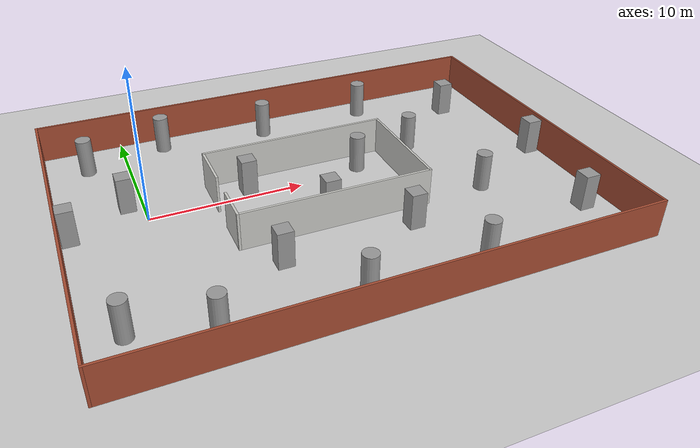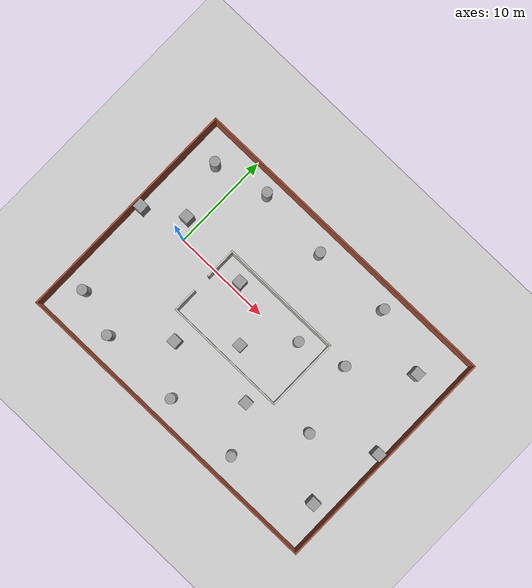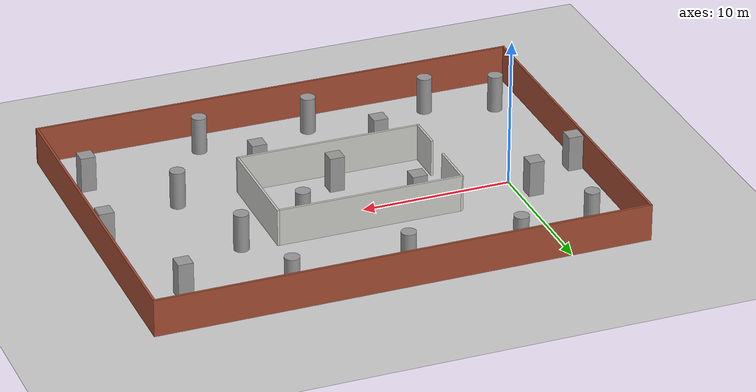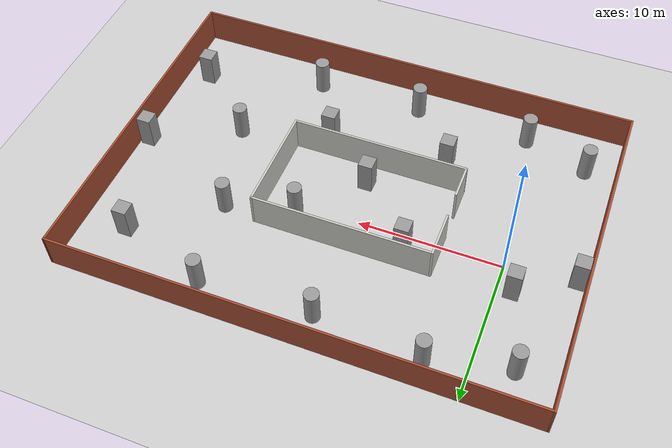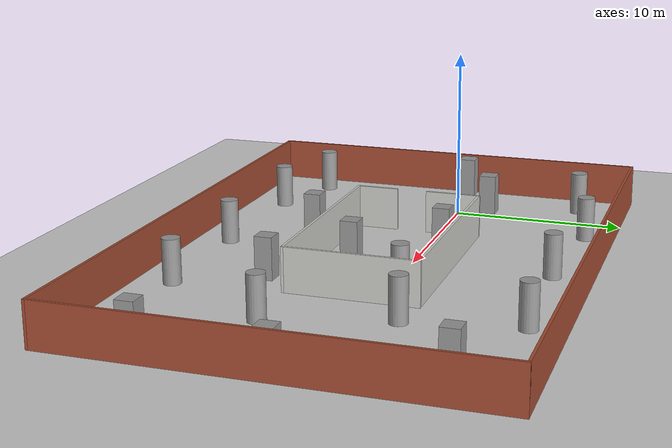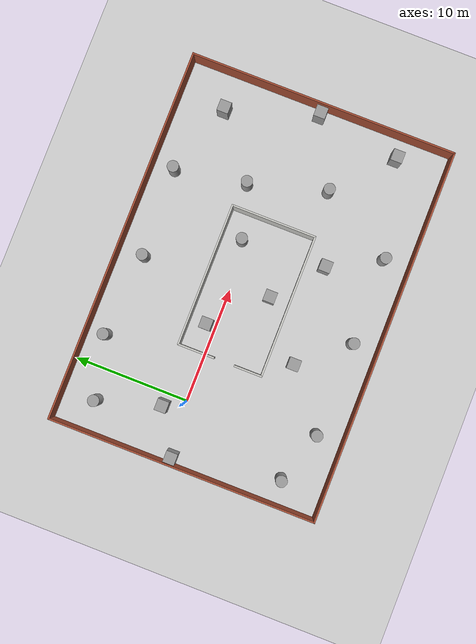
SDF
<sdf version="1.6">
 <world name="default">
  <light name="sun" type="directional">
   <pose>0 0 10 0 -0 0</pose>
   <diffuse>0.8 0.8 0.8 1</diffuse>
   <specular>0.2 0.2 0.2 1</specular>
   <attenuation>
    <range>1000</range>
    <constant>0.9</constant>
    <linear>0.01</linear>
    <quadratic>0.001</quadratic>
   </attenuation>
   <direction>-0.5 0.1 -0.9</direction>
  </light>
  <model name="ground_plane">
   <static>1</static>
   <link name="link">
    <collision name="collision">
     <geometry><plane><normal>0 0 1</normal><size>100 100</size></plane></geometry>
     <surface>
      <contact><collide_bitmask>65535</collide_bitmask></contact>
      <friction><ode><mu>100</mu><mu2>50</mu2></ode></friction>
     </surface>
    </collision>
    <visual name="visual">
     <cast_shadows>0</cast_shadows>
     <geometry><plane><normal>0 0 1</normal><size>100 100</size></plane></geometry>
     <material>
      <script><uri>file://media/materials/scripts/gazebo.material</uri><name>Gazebo/Grey</name></script>
     </material>
    </visual>
   </link>
  </model>
  <gravity>0 0 -9.8</gravity>
  <magnetic_field>6e-06 2.3e-05 -4.2e-05</magnetic_field>
  <atmosphere type="adiabatic"/>
  <physics name="default_physics" default="0" type="ode">
   <max_step_size>0.001</max_step_size>
   <real_time_factor>1</real_time_factor>
   <real_time_update_rate>1000</real_time_update_rate>
  </physics>
  <scene><ambient>0.4 0.4 0.4 1</ambient><background>0.7 0.7 0.7 1</background><shadows>1</shadows></scene>
  <audio><device>default</device></audio>
  <spherical_coordinates>
   <surface_model>EARTH_WGS84</surface_model>
   <latitude_deg>0</latitude_deg>
   <longitude_deg>0</longitude_deg>
   <elevation>0</elevation>
   <heading_deg>0</heading_deg>
  </spherical_coordinates>
  <model name="simple_grave">
   <pose>10.9972 -1.69852 0 0 -0 0</pose>
   <link name="Wall_10">
    <collision name="Wall_10_Collision">
     <geometry><box><size>12.5 0.15 2.5</size></box></geometry>
     <pose>0 0 1.25 0 -0 0</pose>
    </collision>
    <visual name="Wall_10_Visual">
     <pose>0 0 1.25 0 -0 0</pose>
     <geometry><box><size>12.5 0.15 2.5</size></box></geometry>
     <material>
      <script><uri>file://media/materials/scripts/gazebo.material</uri><name>Gazebo/CeilingTiled</name></script>
      <ambient>1 1 1 1</ambient>
     </material>
     <meta><layer>0</layer></meta>
    </visual>
    <pose>-0.596303 -3.36313 0 0 -0 3.14159</pose>
   </link>
   <link name="Wall_11">
    <collision name="Wall_11_Collision">
     <geometry><box><size>2.5 0.15 2.5</size></box></geometry>
     <pose>0 0 1.25 0 -0 0</pose>
    </collision>
    <visual name="Wall_11_Visual">
     <pose>0 0 1.25 0 -0 0</pose>
     <geometry><box><size>2.5 0.15 2.5</size></box></geometry>
     <material>
      <script><uri>file://media/materials/scripts/gazebo.material</uri><name>Gazebo/CeilingTiled</name></script>
      <ambient>1 1 1 1</ambient>
     </material>
     <meta><layer>0</layer></meta>
    </visual>
    <pose>-6.7713 -2.18812 0 0 -0 1.5708</pose>
   </link>
   <link name="Wall_2">
    <collision name="Wall_2_Collision">
     <geometry><box><size>23.5 0.15 2.5</size></box></geometry>
     <pose>0 0 1.25 0 -0 0</pose>
    </collision>
    <visual name="Wall_2_Visual">
     <pose>0 0 1.25 0 -0 0</pose>
     <geometry><box><size>23.5 0.15 2.5</size></box></geometry>
     <material>
      <script><uri>file://media/materials/scripts/gazebo.material</uri><name>Gazebo/Bricks</name></script>
      <ambient>1 1 1 1</ambient>
     </material>
     <meta><layer>0</layer></meta>
    </visual>
    <pose>-16.3 0 0 0 -0 1.5708</pose>
   </link>
   <link name="Wall_3">
    <collision name="Wall_3_Collision">
     <geometry><box><size>32.75 0.15 2.5</size></box></geometry>
     <pose>0 0 1.25 0 -0 0</pose>
    </collision>
    <visual name="Wall_3_Visual">
     <pose>0 0 1.25 0 -0 0</pose>
     <geometry><box><size>32.75 0.15 2.5</size></box></geometry>
     <material>
      <script><uri>file://media/materials/scripts/gazebo.material</uri><name>Gazebo/Bricks</name></script>
      <ambient>1 1 1 1</ambient>
     </material>
     <meta><layer>0</layer></meta>
    </visual>
    <pose>0 11.675 0 0 -0 0</pose>
   </link>
   <link name="Wall_4">
    <collision name="Wall_4_Collision">
     <geometry><box><size>23.5 0.15 2.5</size></box></geometry>
     <pose>0 0 1.25 0 -0 0</pose>
    </collision>
    <visual name="Wall_4_Visual">
     <pose>0 0 1.25 0 -0 0</pose>
     <geometry><box><size>23.5 0.15 2.5</size></box></geometry>
     <material>
      <script><uri>file://media/materials/scripts/gazebo.material</uri><name>Gazebo/Bricks</name></script>
      <ambient>1 1 1 1</ambient>
     </material>
     <meta><layer>0</layer></meta>
    </visual>
    <pose>16.3 0 0 0 -0 -1.5708</pose>
   </link>
   <link name="Wall_5">
    <collision name="Wall_5_Collision">
     <geometry><box><size>32.75 0.15 2.5</size></box></geometry>
     <pose>0 0 1.25 0 -0 0</pose>
    </collision>
    <visual name="Wall_5_Visual">
     <pose>0 0 1.25 0 -0 0</pose>
     <geometry><box><size>32.75 0.15 2.5</size></box></geometry>
     <material>
      <script><uri>file://media/materials/scripts/gazebo.material</uri><name>Gazebo/Bricks</name></script>
      <ambient>1 1 1 1</ambient>
     </material>
     <meta><layer>0</layer></meta>
    </visual>
    <pose>0 -11.675 0 0 -0 3.14159</pose>
   </link>
   <link name="Wall_7">
    <collision name="Wall_7_Collision">
     <geometry><box><size>3.25 0.15 2.5</size></box></geometry>
     <pose>0 0 1.25 0 -0 0</pose>
    </collision>
    <visual name="Wall_7_Visual">
     <pose>0 0 1.25 0 -0 0</pose>
     <geometry><box><size>3.25 0.15 2.5</size></box></geometry>
     <material>
      <script><uri>file://media/materials/scripts/gazebo.material</uri><name>Gazebo/CeilingTiled</name></script>
      <ambient>1 1 1 1</ambient>
     </material>
     <meta><layer>0</layer></meta>
    </visual>
    <pose>-6.7713 2.43688 0 0 -0 1.5708</pose>
   </link>
   <link name="Wall_8">
    <collision name="Wall_8_Collision">
     <geometry><box><size>12.5 0.15 2.5</size></box></geometry>
     <pose>0 0 1.25 0 -0 0</pose>
    </collision>
    <visual name="Wall_8_Visual">
     <pose>0 0 1.25 0 -0 0</pose>
     <geometry><box><size>12.5 0.15 2.5</size></box></geometry>
     <material>
      <script><uri>file://media/materials/scripts/gazebo.material</uri><name>Gazebo/CeilingTiled</name></script>
      <ambient>1 1 1 1</ambient>
     </material>
     <meta><layer>0</layer></meta>
    </visual>
    <pose>-0.596303 3.98687 0 0 -0 0</pose>
   </link>
   <link name="Wall_9">
    <collision name="Wall_9_Collision">
     <geometry><box><size>7.5 0.15 2.5</size></box></geometry>
     <pose>0 0 1.25 0 -0 0</pose>
    </collision>
    <visual name="Wall_9_Visual">
     <pose>0 0 1.25 0 -0 0</pose>
     <geometry><box><size>7.5 0.15 2.5</size></box></geometry>
     <material>
      <script><uri>file://media/materials/scripts/gazebo.material</uri><name>Gazebo/CeilingTiled</name></script>
      <ambient>1 1 1 1</ambient>
     </material>
     <meta><layer>0</layer></meta>
    </visual>
    <pose>5.5787 0.311875 0 0 -0 -1.5708</pose>
   </link>
   <static>1</static>
  </model>
  <model name="unit_box">
   <pose>6.63847 0.785241 1.19937 -2e-06 -0 0.000319</pose>
   <link name="link">
    <inertial>
     <mass>1</mass>
     <inertia>
      <ixx>0.166667</ixx>
      <ixy>0</ixy>
      <ixz>0</ixz>
      <iyy>0.166667</iyy>
      <iyz>0</iyz>
      <izz>0.166667</izz>
     </inertia>
    </inertial>
    <collision name="collision"><geometry><box><size>1 1 2.39873</size></box></geometry></collision>
    <visual name="visual">
     <geometry><box><size>1 1 2.39873</size></box></geometry>
     <material>
      <script><name>Gazebo/Grey</name><uri>file://media/materials/scripts/gazebo.material</uri></script>
     </material>
    </visual>
   </link>
  </model>
  <model name="unit_box_clone">
   <pose>10.6338 -3.36443 1.19937 1e-06 -1e-06 -0.000294</pose>
   <link name="link">
    <inertial>
     <mass>1</mass>
     <inertia>
      <ixx>0.166667</ixx>
      <ixy>0</ixy>
      <ixz>0</ixz>
      <iyy>0.166667</iyy>
      <iyz>0</iyz>
      <izz>0.166667</izz>
     </inertia>
    </inertial>
    <collision name="collision"><geometry><box><size>1 1 2.39873</size></box></geometry></collision>
    <visual name="visual">
     <geometry><box><size>1 1 2.39873</size></box></geometry>
     <material>
      <script><name>Gazebo/Grey</name><uri>file://media/materials/scripts/gazebo.material</uri></script>
     </material>
    </visual>
   </link>
  </model>
  <model name="unit_cylinder">
   <pose>14.2791 0.569778 1.26627 0 -0 -1e-05</pose>
   <link name="link">
    <inertial>
     <mass>1</mass>
     <inertia><ixx>0.145833</ixx><ixy>0</ixy><ixz>0</ixz><iyy>0.145833</iyy><iyz>0</iyz><izz>0.125</izz></inertia>
    </inertial>
    <collision name="collision">
     <geometry><cylinder><radius>0.5</radius><length>2.53254</length></cylinder></geometry>
    </collision>
    <visual name="visual">
     <geometry><cylinder><radius>0.5</radius><length>2.53254</length></cylinder></geometry>
     <material>
      <script><name>Gazebo/Grey</name><uri>file://media/materials/scripts/gazebo.material</uri></script>
     </material>
    </visual>
   </link>
  </model>
  <model name="unit_cylinder_clone">
   <pose>-2.60861 7.08129 1.26626 0 0 -7e-06</pose>
   <link name="link">
    <inertial>
     <mass>1</mass>
     <inertia><ixx>0.145833</ixx><ixy>0</ixy><ixz>0</ixz><iyy>0.145833</iyy><iyz>0</iyz><izz>0.125</izz></inertia>
    </inertial>
    <collision name="collision">
     <geometry><cylinder><radius>0.5</radius><length>2.53254</length></cylinder></geometry>
    </collision>
    <visual name="visual">
     <geometry><cylinder><radius>0.5</radius><length>2.53254</length></cylinder></geometry>
     <material>
      <script><name>Gazebo/Grey</name><uri>file://media/materials/scripts/gazebo.material</uri></script>
     </material>
    </visual>
   </link>
  </model>
  <model name="unit_cylinder_clone_0">
   <pose>2.77121 8.37464 1.26626 0 0 -7e-06</pose>
   <link name="link">
    <inertial>
     <mass>1</mass>
     <inertia><ixx>0.145833</ixx><ixy>0</ixy><ixz>0</ixz><iyy>0.145833</iyy><iyz>0</iyz><izz>0.125</izz></inertia>
    </inertial>
    <collision name="collision">
     <geometry><cylinder><radius>0.5</radius><length>2.53254</length></cylinder></geometry>
    </collision>
    <visual name="visual">
     <geometry><cylinder><radius>0.5</radius><length>2.53254</length></cylinder></geometry>
     <material>
      <script><name>Gazebo/Grey</name><uri>file://media/materials/scripts/gazebo.material</uri></script>
     </material>
    </visual>
   </link>
  </model>
  <model name="unit_cylinder_clone_1">
   <pose>10.0504 7.788 1.26626 0 0 -7e-06</pose>
   <link name="link">
    <inertial>
     <mass>1</mass>
     <inertia><ixx>0.145833</ixx><ixy>0</ixy><ixz>0</ixz><iyy>0.145833</iyy><iyz>0</iyz><izz>0.125</izz></inertia>
    </inertial>
    <collision name="collision">
     <geometry><cylinder><radius>0.5</radius><length>2.53254</length></cylinder></geometry>
    </collision>
    <visual name="visual">
     <geometry><cylinder><radius>0.5</radius><length>2.53254</length></cylinder></geometry>
     <material>
      <script><name>Gazebo/Grey</name><uri>file://media/materials/scripts/gazebo.material</uri></script>
     </material>
    </visual>
   </link>
  </model>
  <model name="unit_cylinder_clone_2">
   <pose>17.813 8.0891 1.26626 0 -0 1e-06</pose>
   <link name="link">
    <inertial>
     <mass>1</mass>
     <inertia><ixx>0.145833</ixx><ixy>0</ixy><ixz>0</ixz><iyy>0.145833</iyy><iyz>0</iyz><izz>0.125</izz></inertia>
    </inertial>
    <collision name="collision">
     <geometry><cylinder><radius>0.5</radius><length>2.53254</length></cylinder></geometry>
    </collision>
    <visual name="visual">
     <geometry><cylinder><radius>0.5</radius><length>2.53254</length></cylinder></geometry>
     <material>
      <script><name>Gazebo/Grey</name><uri>file://media/materials/scripts/gazebo.material</uri></script>
     </material>
    </visual>
   </link>
  </model>
  <model name="unit_cylinder_clone_2_clone">
   <pose>20.7505 -4.74281 1.26627 0 -0 -1e-06</pose>
   <link name="link">
    <inertial>
     <mass>1</mass>
     <inertia><ixx>0.145833</ixx><ixy>0</ixy><ixz>0</ixz><iyy>0.145833</iyy><iyz>0</iyz><izz>0.125</izz></inertia>
    </inertial>
    <collision name="collision">
     <geometry><cylinder><radius>0.5</radius><length>2.53254</length></cylinder></geometry>
    </collision>
    <visual name="visual">
     <geometry><cylinder><radius>0.5</radius><length>2.53254</length></cylinder></geometry>
     <material>
      <script><name>Gazebo/Grey</name><uri>file://media/materials/scripts/gazebo.material</uri></script>
     </material>
    </visual>
   </link>
  </model>
  <model name="unit_cylinder_clone_2_clone_0">
   <pose>18.8701 1.89843 1.26626 0 0 -1e-06</pose>
   <link name="link">
    <inertial>
     <mass>1</mass>
     <inertia><ixx>0.145833</ixx><ixy>0</ixy><ixz>0</ixz><iyy>0.145833</iyy><iyz>0</iyz><izz>0.125</izz></inertia>
    </inertial>
    <collision name="collision">
     <geometry><cylinder><radius>0.5</radius><length>2.53254</length></cylinder></geometry>
    </collision>
    <visual name="visual">
     <geometry><cylinder><radius>0.5</radius><length>2.53254</length></cylinder></geometry>
     <material>
      <script><name>Gazebo/Grey</name><uri>file://media/materials/scripts/gazebo.material</uri></script>
     </material>
    </visual>
   </link>
  </model>
  <model name="unit_cylinder_clone_2_clone_1">
   <pose>17.0586 -11.1433 1.26627 0 -0 -6e-06</pose>
   <link name="link">
    <inertial>
     <mass>1</mass>
     <inertia><ixx>0.145833</ixx><ixy>0</ixy><ixz>0</ixz><iyy>0.145833</iyy><iyz>0</iyz><izz>0.125</izz></inertia>
    </inertial>
    <collision name="collision">
     <geometry><cylinder><radius>0.5</radius><length>2.53254</length></cylinder></geometry>
    </collision>
    <visual name="visual">
     <geometry><cylinder><radius>0.5</radius><length>2.53254</length></cylinder></geometry>
     <material>
      <script><name>Gazebo/Grey</name><uri>file://media/materials/scripts/gazebo.material</uri></script>
     </material>
    </visual>
   </link>
  </model>
  <model name="unit_cylinder_clone_2_clone_2">
   <pose>9.49892 -11.2082 1.26627 0 -0 2e-06</pose>
   <link name="link">
    <inertial>
     <mass>1</mass>
     <inertia><ixx>0.145833</ixx><ixy>0</ixy><ixz>0</ixz><iyy>0.145833</iyy><iyz>0</iyz><izz>0.125</izz></inertia>
    </inertial>
    <collision name="collision">
     <geometry><cylinder><radius>0.5</radius><length>2.53254</length></cylinder></geometry>
    </collision>
    <visual name="visual">
     <geometry><cylinder><radius>0.5</radius><length>2.53254</length></cylinder></geometry>
     <material>
      <script><name>Gazebo/Grey</name><uri>file://media/materials/scripts/gazebo.material</uri></script>
     </material>
    </visual>
   </link>
  </model>
  <model name="unit_cylinder_clone_2_clone_3">
   <pose>1.33506 -11.0766 1.26627 0 -0 -1e-06</pose>
   <link name="link">
    <inertial>
     <mass>1</mass>
     <inertia><ixx>0.145833</ixx><ixy>0</ixy><ixz>0</ixz><iyy>0.145833</iyy><iyz>0</iyz><izz>0.125</izz></inertia>
    </inertial>
    <collision name="collision">
     <geometry><cylinder><radius>0.5</radius><length>2.53254</length></cylinder></geometry>
    </collision>
    <visual name="visual">
     <geometry><cylinder><radius>0.5</radius><length>2.53254</length></cylinder></geometry>
     <material>
      <script><name>Gazebo/Grey</name><uri>file://media/materials/scripts/gazebo.material</uri></script>
     </material>
    </visual>
   </link>
  </model>
  <model name="unit_cylinder_clone_2_clone_4">
   <pose>-3.15056 -9.67831 1.26626 0 -0 3e-06</pose>
   <link name="link">
    <inertial>
     <mass>1</mass>
     <inertia><ixx>0.145833</ixx><ixy>0</ixy><ixz>0</ixz><iyy>0.145833</iyy><iyz>0</iyz><izz>0.125</izz></inertia>
    </inertial>
    <collision name="collision">
     <geometry><cylinder><radius>0.5</radius><length>2.53254</length></cylinder></geometry>
    </collision>
    <visual name="visual">
     <geometry><cylinder><radius>0.5</radius><length>2.53254</length></cylinder></geometry>
     <material>
      <script><name>Gazebo/Grey</name><uri>file://media/materials/scripts/gazebo.material</uri></script>
     </material>
    </visual>
   </link>
  </model>
  <model name="unit_box_clone_clone">
   <pose>24.0736 5.9511 1.19937 0 2e-06 -0.000879</pose>
   <link name="link">
    <inertial>
     <mass>1</mass>
     <inertia>
      <ixx>0.166667</ixx>
      <ixy>0</ixy>
      <ixz>0</ixz>
      <iyy>0.166667</iyy>
      <iyz>0</iyz>
      <izz>0.166667</izz>
     </inertia>
    </inertial>
    <collision name="collision"><geometry><box><size>1 1 2.39873</size></box></geometry></collision>
    <visual name="visual">
     <geometry><box><size>1 1 2.39873</size></box></geometry>
     <material>
      <script><name>Gazebo/Grey</name><uri>file://media/materials/scripts/gazebo.material</uri></script>
     </material>
    </visual>
   </link>
  </model>
  <model name="unit_box_clone_clone_0">
   <pose>26.5749 -1.75553 1.19937 -0 2e-06 -0.000196</pose>
   <link name="link">
    <inertial>
     <mass>1</mass>
     <inertia>
      <ixx>0.166667</ixx>
      <ixy>0</ixy>
      <ixz>0</ixz>
      <iyy>0.166667</iyy>
      <iyz>0</iyz>
      <izz>0.166667</izz>
     </inertia>
    </inertial>
    <collision name="collision"><geometry><box><size>1 1 2.39873</size></box></geometry></collision>
    <visual name="visual">
     <geometry><box><size>1 1 2.39873</size></box></geometry>
     <material>
      <script><name>Gazebo/Grey</name><uri>file://media/materials/scripts/gazebo.material</uri></script>
     </material>
    </visual>
   </link>
  </model>
  <model name="unit_box_clone_clone_0_clone">
   <pose>25.4075 -9.06888 1.19937 1e-06 1e-06 -0.000405</pose>
   <link name="link">
    <inertial>
     <mass>1</mass>
     <inertia>
      <ixx>0.166667</ixx>
      <ixy>0</ixy>
      <ixz>0</ixz>
      <iyy>0.166667</iyy>
      <iyz>0</iyz>
      <izz>0.166667</izz>
     </inertia>
    </inertial>
    <collision name="collision"><geometry><box><size>1 1 2.39873</size></box></geometry></collision>
    <visual name="visual">
     <geometry><box><size>1 1 2.39873</size></box></geometry>
     <material>
      <script><name>Gazebo/Grey</name><uri>file://media/materials/scripts/gazebo.material</uri></script>
     </material>
    </visual>
   </link>
  </model>
  <model name="unit_box_clone_clone_0_clone_0">
   <pose>14.6634 -6.74967 1.19937 0 -2e-06 -0.000832</pose>
   <link name="link">
    <inertial>
     <mass>1</mass>
     <inertia>
      <ixx>0.166667</ixx>
      <ixy>0</ixy>
      <ixz>0</ixz>
      <iyy>0.166667</iyy>
      <iyz>0</iyz>
      <izz>0.166667</izz>
     </inertia>
    </inertial>
    <collision name="collision"><geometry><box><size>1 1 2.39873</size></box></geometry></collision>
    <visual name="visual">
     <geometry><box><size>1 1 2.39873</size></box></geometry>
     <material>
      <script><name>Gazebo/Grey</name><uri>file://media/materials/scripts/gazebo.material</uri></script>
     </material>
    </visual>
   </link>
  </model>
  <model name="unit_box_clone_clone_0_clone_1">
   <pose>6.1199 -7.21921 1.19936 -2e-06 2e-06 -0.000295</pose>
   <link name="link">
    <inertial>
     <mass>1</mass>
     <inertia>
      <ixx>0.166667</ixx>
      <ixy>0</ixy>
      <ixz>0</ixz>
      <iyy>0.166667</iyy>
      <iyz>0</iyz>
      <izz>0.166667</izz>
     </inertia>
    </inertial>
    <collision name="collision"><geometry><box><size>1 1 2.39873</size></box></geometry></collision>
    <visual name="visual">
     <geometry><box><size>1 1 2.39873</size></box></geometry>
     <material>
      <script><name>Gazebo/Grey</name><uri>file://media/materials/scripts/gazebo.material</uri></script>
     </material>
    </visual>
   </link>
  </model>
  <model name="unit_box_clone_clone_0_clone_1_clone">
   <pose>-4.68978 -0.506097 1.19937 -2e-06 -0 0.000893</pose>
   <link name="link">
    <inertial>
     <mass>1</mass>
     <inertia>
      <ixx>0.166667</ixx>
      <ixy>0</ixy>
      <ixz>0</ixz>
      <iyy>0.166667</iyy>
      <iyz>0</iyz>
      <izz>0.166667</izz>
     </inertia>
    </inertial>
    <collision name="collision"><geometry><box><size>1 1 2.39873</size></box></geometry></collision>
    <visual name="visual">
     <geometry><box><size>1 1 2.39873</size></box></geometry>
     <material>
      <script><name>Gazebo/Grey</name><uri>file://media/materials/scripts/gazebo.material</uri></script>
     </material>
    </visual>
   </link>
  </model>
  <model name="unit_box_clone_clone_0_clone_1_clone_0">
   <pose>-0.985168 1.70892 1.19936 2e-06 -2e-06 -0.000719</pose>
   <link name="link">
    <inertial>
     <mass>1</mass>
     <inertia>
      <ixx>0.166667</ixx>
      <ixy>0</ixy>
      <ixz>0</ixz>
      <iyy>0.166667</iyy>
      <iyz>0</iyz>
      <izz>0.166667</izz>
     </inertia>
    </inertial>
    <collision name="collision"><geometry><box><size>1 1 2.39873</size></box></geometry></collision>
    <visual name="visual">
     <geometry><box><size>1 1 2.39873</size></box></geometry>
     <material>
      <script><name>Gazebo/Grey</name><uri>file://media/materials/scripts/gazebo.material</uri></script>
     </material>
    </visual>
   </link>
  </model>
 </world>
</sdf>
